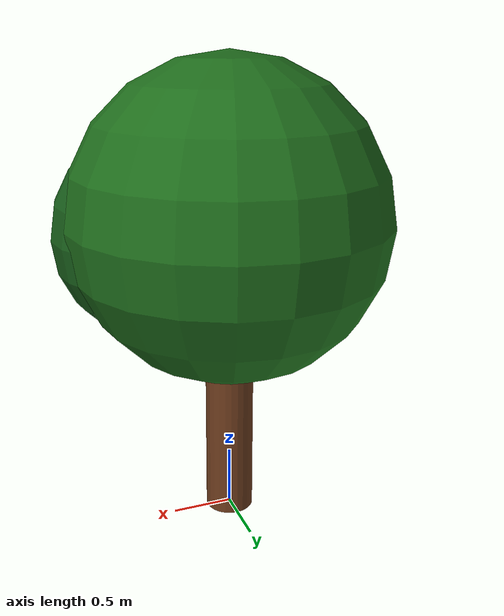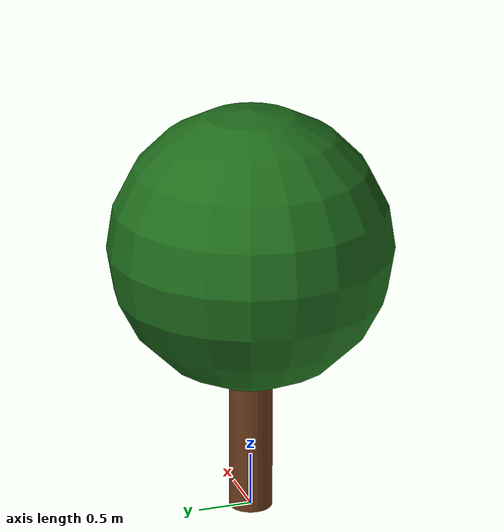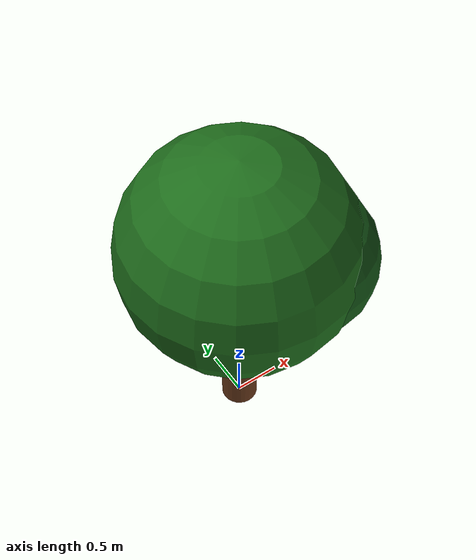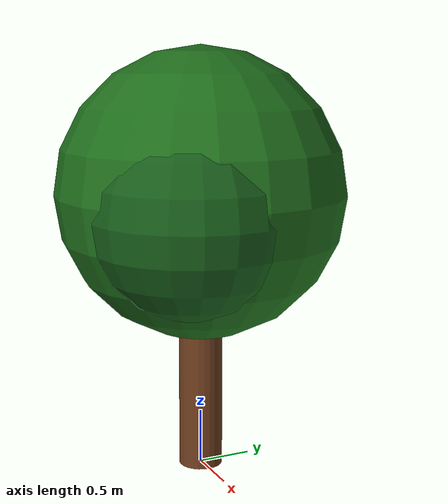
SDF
<?xml version="1.0"?>
<sdf version="1.6">
  <model name="orchard_tree_large">
    <static>true</static>
    <link name="trunk">
      <pose>0 0 1.1 0 0 0</pose>
      <collision name="collision">
        <geometry>
          <cylinder>
            <radius>0.20</radius>
            <length>2.2</length>
          </cylinder>
        </geometry>
      </collision>
      <visual name="visual">
        <geometry>
          <cylinder>
            <radius>0.20</radius>
            <length>2.2</length>
          </cylinder>
        </geometry>
        <material>
          <ambient>0.34 0.18 0.08 1</ambient>
          <diffuse>0.42 0.23 0.11 1</diffuse>
        </material>
      </visual>
    </link>
    <link name="crown_main">
      <pose>0 0 2.55 0 0 0</pose>
      <collision name="collision">
        <geometry>
          <sphere>
            <radius>1.30</radius>
          </sphere>
        </geometry>
      </collision>
      <visual name="visual">
        <geometry>
          <sphere>
            <radius>1.30</radius>
          </sphere>
        </geometry>
        <material>
          <ambient>0.08 0.30 0.08 1</ambient>
          <diffuse>0.12 0.43 0.11 1</diffuse>
        </material>
      </visual>
    </link>
    <link name="crown_offset">
      <pose>0.48 -0.30 2.42 0 0 0</pose>
      <visual name="visual">
        <geometry>
          <sphere>
            <radius>0.88</radius>
          </sphere>
        </geometry>
        <material>
          <ambient>0.05 0.24 0.07 1</ambient>
          <diffuse>0.09 0.36 0.10 1</diffuse>
        </material>
      </visual>
    </link>
  </model>
</sdf>
